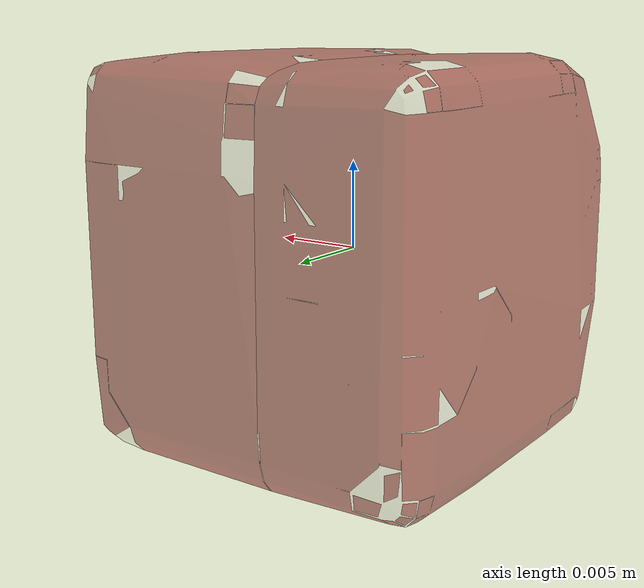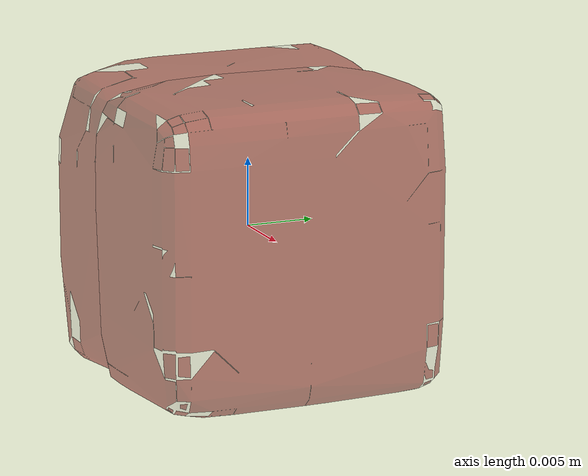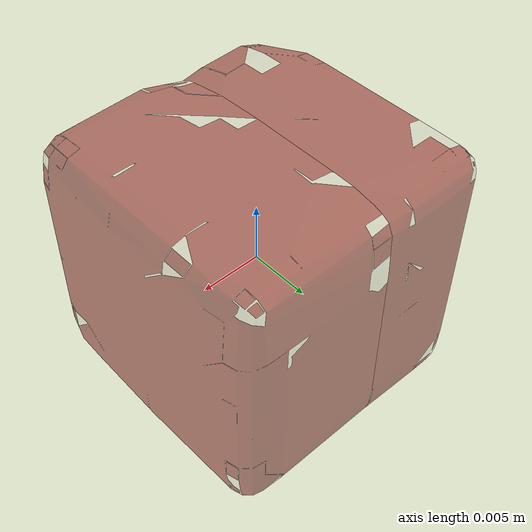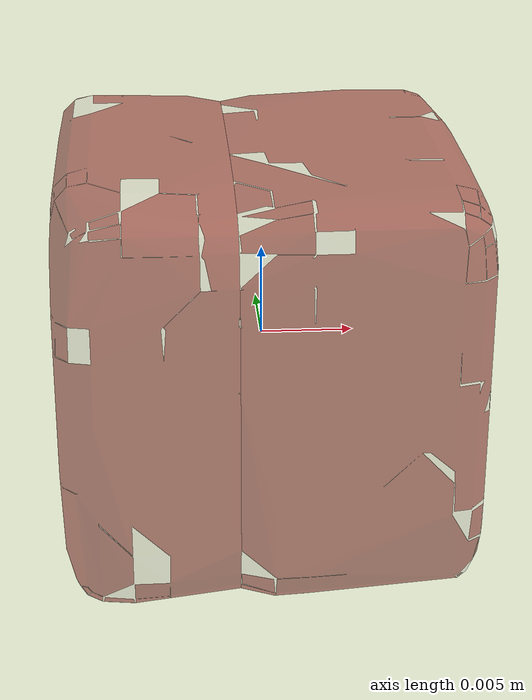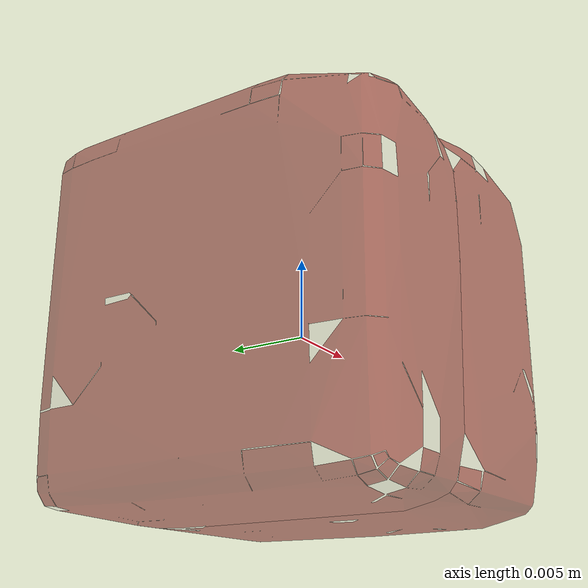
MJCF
<mujoco model="model">
  <compiler angle="radian"/>
  <asset>
    <mesh file="visual/IceCube006.obj" name="IceCube006_vis"/>
    <texture file="visual/T_BC001.png" name="IceCube006_material" type="2d"/>
    <material name="IceCube006_material" rgba="1 1 1 0.24545451998710632" texture="IceCube006_material" shininess="0.2" specular="1"/>
    <mesh file="collision/collision_mesh_collision_0.obj" name="IceCube006_collision_mesh_0"/>
    <mesh file="collision/collision_mesh_collision_1.obj" name="IceCube006_collision_mesh_1"/>
  </asset>
  <default>
    <default class="visual">
      <geom conaffinity="0" contype="0" group="1" type="mesh"/>
    </default>
    <default class="collision">
      <geom group="0" rgba="0.5 0 0 0.5"/>
    </default>
    <default class="spawn">
      <geom group="0" rgba="1 1 1 0.5" contype="0" conaffinity="0"/>
      <site group="0" rgba="1 1 1 0.5"/>
    </default>
    <default class="region">
      <geom group="1" conaffinity="0" contype="0" rgba="0 1 0 0" mass="0"/>
    </default>
  </default>
  <worldbody>
    <body>
      <body name="object">
        <geom mesh="IceCube006_vis" type="mesh" solimp="0.998 0.998 0.001" solref="0.001 1" density="100" friction="0.95 0.3 0.1" class="visual" material="IceCube006_material"/>
        <geom class="region" name="reg_bbox" type="box" pos="0.0 0.0 0.0" size="0.010998 0.010999 0.0109985"/>
        <geom mesh="IceCube006_collision_mesh_0" type="mesh" class="collision"/>
        <geom mesh="IceCube006_collision_mesh_1" type="mesh" class="collision"/>
      </body>
    </body>
  </worldbody>
  <actuator/>
</mujoco>
